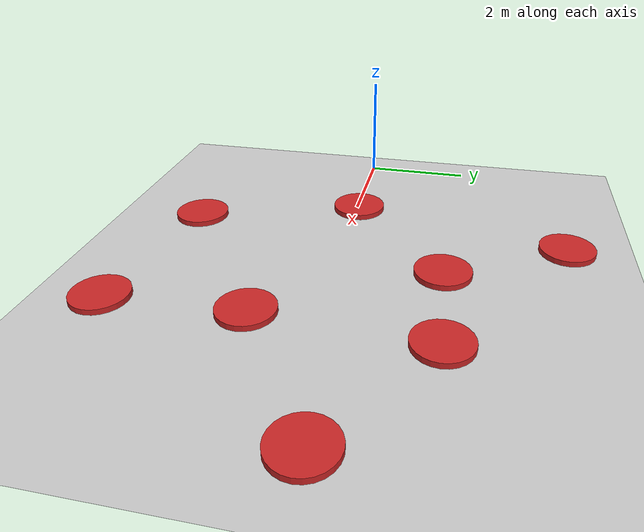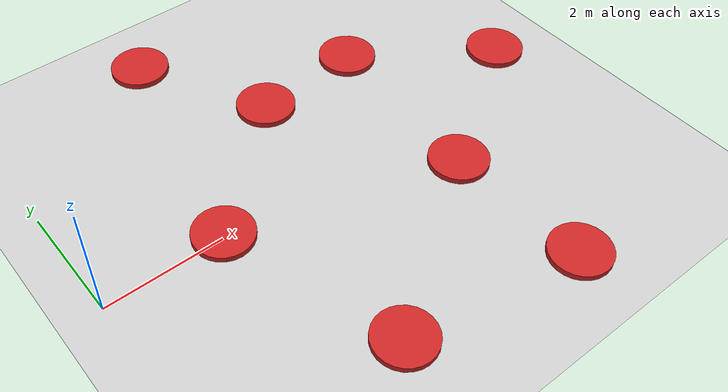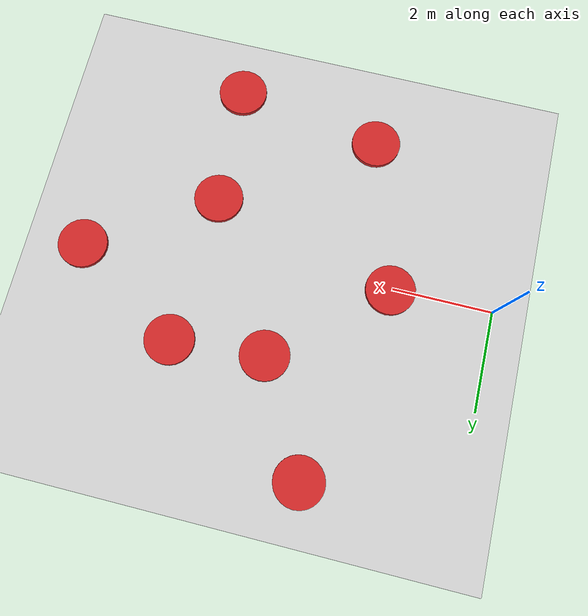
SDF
<sdf version="1.6">
 <world name="default">
  <light name="sun" type="directional">
   <pose>0 0 10 0 -0 0</pose>
   <diffuse>0.8 0.8 0.8 1</diffuse>
   <specular>0.2 0.2 0.2 1</specular>
   <attenuation>
    <range>1000</range>
    <constant>0.9</constant>
    <linear>0.01</linear>
    <quadratic>0.001</quadratic>
   </attenuation>
   <direction>-0.5 0.1 -0.9</direction>
  </light>
  <model name="ground_plane">
   <static>1</static>
   <link name="link">
    <collision name="collision">
     <geometry><plane><normal>0 0 1</normal><size>100 100</size></plane></geometry>
     <surface><friction><ode><mu>100</mu><mu2>50</mu2></ode></friction></surface>
    </collision>
    <visual name="visual">
     <cast_shadows>0</cast_shadows>
     <geometry><plane><normal>0 0 1</normal><size>100 100</size></plane></geometry>
     <material>
      <script><uri>file://media/materials/scripts/gazebo.material</uri><name>Gazebo/Grey</name></script>
     </material>
    </visual>
   </link>
  </model>
  <gravity>0 0 -9.8</gravity>
  <magnetic_field>6e-06 2.3e-05 -4.2e-05</magnetic_field>
  <atmosphere type="adiabatic"/>
  <physics name="default_physics" default="0" type="ode">
   <max_step_size>0.001</max_step_size>
   <real_time_factor>1</real_time_factor>
   <real_time_update_rate>1000</real_time_update_rate>
  </physics>
  <scene><ambient>0.4 0.4 0.4 1</ambient><background>0.7 0.7 0.7 1</background><shadows>1</shadows></scene>
  <spherical_coordinates>
   <surface_model>EARTH_WGS84</surface_model>
   <latitude_deg>0</latitude_deg>
   <longitude_deg>0</longitude_deg>
   <elevation>0</elevation>
   <heading_deg>0</heading_deg>
  </spherical_coordinates>
  <model name="unit_cylinder_0">
   <pose>2.97499 4.03015 0.049991 0 -0 0</pose>
   <link name="link">
    <inertial>
     <mass>1</mass>
     <inertia><ixx>0.145833</ixx><ixy>0</ixy><ixz>0</ixz><iyy>0.145833</iyy><iyz>0</iyz><izz>0.125</izz></inertia>
    </inertial>
    <collision name="collision">
     <geometry><cylinder><radius>0.5</radius><length>0.1</length></cylinder></geometry>
    </collision>
    <visual name="visual">
     <geometry><cylinder><radius>0.5</radius><length>0.1</length></cylinder></geometry>
     <material>
      <script><name>Gazebo/Red</name><uri>file://media/materials/scripts/gazebo.material</uri></script>
     </material>
    </visual>
   </link>
  </model>
  <model name="unit_cylinder_0_clone_0">
   <pose>2.05023 0.044374 0.049991 0 -0 0</pose>
   <link name="link">
    <inertial>
     <mass>1</mass>
     <inertia><ixx>0.145833</ixx><ixy>0</ixy><ixz>0</ixz><iyy>0.145833</iyy><iyz>0</iyz><izz>0.125</izz></inertia>
    </inertial>
    <collision name="collision">
     <geometry><cylinder><radius>0.5</radius><length>0.1</length></cylinder></geometry>
    </collision>
    <visual name="visual">
     <geometry><cylinder><radius>0.5</radius><length>0.1</length></cylinder></geometry>
     <material>
      <script><name>Gazebo/Red</name><uri>file://media/materials/scripts/gazebo.material</uri></script>
     </material>
    </visual>
   </link>
  </model>
  <model name="unit_cylinder_0_clone_1">
   <pose>2.96532 -2.95738 0.049996 -3e-06 -3e-06 0</pose>
   <link name="link">
    <inertial>
     <mass>1</mass>
     <inertia><ixx>0.145833</ixx><ixy>0</ixy><ixz>0</ixz><iyy>0.145833</iyy><iyz>0</iyz><izz>0.125</izz></inertia>
    </inertial>
    <collision name="collision">
     <geometry><cylinder><radius>0.5</radius><length>0.1</length></cylinder></geometry>
    </collision>
    <visual name="visual">
     <geometry><cylinder><radius>0.5</radius><length>0.1</length></cylinder></geometry>
     <material>
      <script><name>Gazebo/Red</name><uri>file://media/materials/scripts/gazebo.material</uri></script>
     </material>
    </visual>
   </link>
  </model>
  <model name="unit_cylinder_0_clone_2">
   <pose>5.84837 -1.0078 0.049994 3e-06 3e-06 0</pose>
   <link name="link">
    <inertial>
     <mass>1</mass>
     <inertia><ixx>0.145833</ixx><ixy>0</ixy><ixz>0</ixz><iyy>0.145833</iyy><iyz>0</iyz><izz>0.125</izz></inertia>
    </inertial>
    <collision name="collision">
     <geometry><cylinder><radius>0.5</radius><length>0.1</length></cylinder></geometry>
    </collision>
    <visual name="visual">
     <geometry><cylinder><radius>0.5</radius><length>0.1</length></cylinder></geometry>
     <material>
      <script><name>Gazebo/Red</name><uri>file://media/materials/scripts/gazebo.material</uri></script>
     </material>
    </visual>
   </link>
  </model>
  <model name="unit_cylinder_0_clone_3">
   <pose>6.03848 2.03803 0.049996 -3e-06 -3e-06 0</pose>
   <link name="link">
    <inertial>
     <mass>1</mass>
     <inertia><ixx>0.145833</ixx><ixy>0</ixy><ixz>0</ixz><iyy>0.145833</iyy><iyz>0</iyz><izz>0.125</izz></inertia>
    </inertial>
    <collision name="collision">
     <geometry><cylinder><radius>0.5</radius><length>0.1</length></cylinder></geometry>
    </collision>
    <visual name="visual">
     <geometry><cylinder><radius>0.5</radius><length>0.1</length></cylinder></geometry>
     <material>
      <script><name>Gazebo/Red</name><uri>file://media/materials/scripts/gazebo.material</uri></script>
     </material>
    </visual>
   </link>
  </model>
  <model name="unit_cylinder_0_clone_4">
   <pose>5.95177 -3.43561 0.049996 -3e-06 -3e-06 0</pose>
   <link name="link">
    <inertial>
     <mass>1</mass>
     <inertia><ixx>0.145833</ixx><ixy>0</ixy><ixz>0</ixz><iyy>0.145833</iyy><iyz>0</iyz><izz>0.125</izz></inertia>
    </inertial>
    <collision name="collision">
     <geometry><cylinder><radius>0.5</radius><length>0.1</length></cylinder></geometry>
    </collision>
    <visual name="visual">
     <geometry><cylinder><radius>0.5</radius><length>0.1</length></cylinder></geometry>
     <material>
      <script><name>Gazebo/Red</name><uri>file://media/materials/scripts/gazebo.material</uri></script>
     </material>
    </visual>
   </link>
  </model>
  <model name="unit_cylinder_0_clone_5">
   <pose>8.26318 0.574379 0.049994 3e-06 3e-06 0</pose>
   <link name="link">
    <inertial>
     <mass>1</mass>
     <inertia><ixx>0.145833</ixx><ixy>0</ixy><ixz>0</ixz><iyy>0.145833</iyy><iyz>0</iyz><izz>0.125</izz></inertia>
    </inertial>
    <collision name="collision">
     <geometry><cylinder><radius>0.5</radius><length>0.1</length></cylinder></geometry>
    </collision>
    <visual name="visual">
     <geometry><cylinder><radius>0.5</radius><length>0.1</length></cylinder></geometry>
     <material>
      <script><name>Gazebo/Red</name><uri>file://media/materials/scripts/gazebo.material</uri></script>
     </material>
    </visual>
   </link>
  </model>
  <model name="unit_cylinder_0_clone_6">
   <pose>4.16092 1.90008 0.049996 -3e-06 -3e-06 0</pose>
   <link name="link">
    <inertial>
     <mass>1</mass>
     <inertia><ixx>0.145833</ixx><ixy>0</ixy><ixz>0</ixz><iyy>0.145833</iyy><iyz>0</iyz><izz>0.125</izz></inertia>
    </inertial>
    <collision name="collision">
     <geometry><cylinder><radius>0.5</radius><length>0.1</length></cylinder></geometry>
    </collision>
    <visual name="visual">
     <geometry><cylinder><radius>0.5</radius><length>0.1</length></cylinder></geometry>
     <material>
      <script><name>Gazebo/Red</name><uri>file://media/materials/scripts/gazebo.material</uri></script>
     </material>
    </visual>
   </link>
  </model>
 </world>
</sdf>
